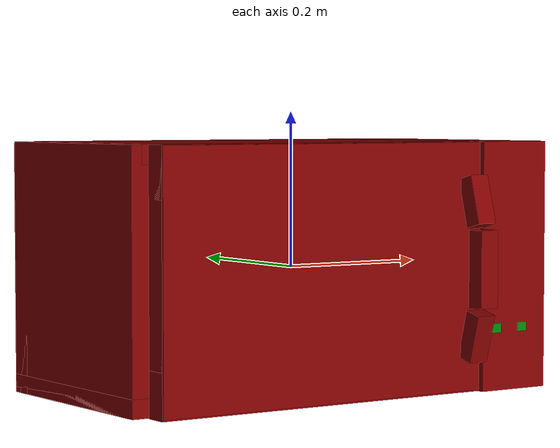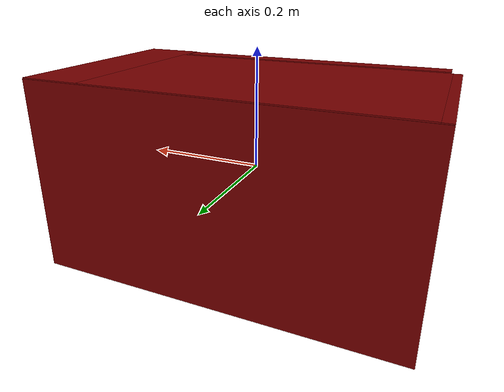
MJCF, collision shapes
<?xml version='1.0' encoding='UTF-8'?>
<mujoco model="model">
  <option timestep="0.002" gravity="0.0 0.0 -9.81"/>
  <compiler angle="radian"/>
  <asset>
    <mesh file="visuals/door.obj" name="door_vis"/>
    <mesh file="visuals/door_Clear.obj" name="door_Clear_vis"/>
    <mesh file="visuals/Body001.obj" name="Body001_vis"/>
    <mesh file="visuals/Disc001.obj" name="Disc001_vis"/>
    <texture file="visuals/T_BC001.png" name="Body001_material" type="2d"/>
    <material name="Body001_material" rgba="1 1 1 1.0" texture="Body001_material" shininess="1" specular="1"/>
    <texture file="visuals/T_BC001.png" name="door_material" type="2d"/>
    <material name="door_material" rgba="1 1 1 1.0" texture="door_material" shininess="1" specular="1"/>
    <material name="door_Clear_material" rgba="0.021756866946816444 0.021756866946816444 0.021756866946816444 0.75" shininess="0.5" specular="0.3103448502657381"/>
    <texture file="visuals/T_BC001.png" name="Disc001_material" type="2d"/>
    <material name="Disc001_material" rgba="1 1 1 1.0" texture="Disc001_material" shininess="0.5" specular="0.5"/>
  </asset>
  <default>
    <default class="visual">
      <geom conaffinity="0" contype="0" group="1" type="mesh"/>
    </default>
    <default class="collision">
      <geom group="0" rgba="0.5 0 0 0.5"/>
    </default>
    <default class="spawn">
      <geom group="0" rgba="1 1 1 0.5" contype="0" conaffinity="0"/>
      <site group="0" rgba="1 1 1 0.5"/>
    </default>
    <default class="region">
      <geom group="1" conaffinity="0" contype="0" rgba="0 1 0 0"/>
    </default>
  </default>
  <worldbody>
    <body>
      <body name="object">
        <geom class="collision" type="cylinder" pos="-0.04303608 0.03716139 -0.12631971" size="0.11190134286880493 0.0009499265579506755" quat="1.0 0.0 0.0 0.0" name="tray" rgba="0 1 0 0.5"/>
        <geom class="collision" type="box" pos="0.21929352 -0.15362347 -0.08028984" size="0.007259576581418514 0.00034565318492241204 0.006006236653774977" quat="1.0 0.0 0.0 0.0" name="stop_button" rgba="0.0 0.5 0 0.5"/>
        <geom class="collision" type="box" pos="0.26204094 -0.15361616 -0.08028984" size="0.007371836341917515 0.0003401900758035481 0.00600624131038785" quat="1.0 0.0 0.0 0.0" name="start_button" rgba="0.0 0.5 0 0.5"/>
        <geom mesh="Body001_vis" type="mesh" solimp="0.998 0.998 0.001" solref="0.001 1" friction="0.95 0.3 0.1" class="visual" material="Body001_material"/>
        <geom class="collision" type="box" pos="-0.28896058 0.04130977 0.00007484" size="0.011907682754099369 0.148495614528656 0.16152003407478333" quat="1.0 0.0 0.0 0.0"/>
        <geom class="collision" type="box" pos="0.24857815 0.01836173 -0.00000002" size="0.052290093153715134 0.17144492268562317 0.16199369728565216" quat="1.0 0.0 0.0 0.0"/>
        <geom class="collision" type="box" pos="-0.04344033 0.04130977 0.15008594" size="0.24334365129470825 0.1484958380460739 0.011907802894711494" quat="1.0 0.0 0.0 0.0"/>
        <geom class="collision" type="box" pos="-0.01550968 0.04130977 -0.15008590" size="0.28535860776901245 0.1484958827495575 0.011907716281712055" quat="1.0 0.0 0.0 0.0"/>
        <geom class="collision" type="box" pos="-0.00000003 0.17502934 -0.00091003" size="0.30086827278137207 0.01552149560302496 0.1610836237668991" quat="1.0 0.0 0.0 0.0"/>
        <body name="door">
          <joint axis="0.0 0.0 1.0" pos="-0.28054434 -0.13442751 -0.00011008" limited="true" name="microjoint" range="-1.5707963267948966 0.0" type="hinge" damping="1" frictionloss="1" armature=".01" stiffness="0.05"/>
          <geom mesh="door_vis" type="mesh" solimp="0.998 0.998 0.001" solref="0.001 1" friction="0.95 0.3 0.1" class="visual" material="door_material"/>
          <geom class="collision" type="box" pos="-0.04560722 -0.13233020 0.12985308" size="0.2380245476961136 0.01497406605631113 0.03214065730571747" quat="1.0 0.0 0.0 0.0"/>
          <geom class="collision" type="box" pos="-0.04560729 -0.13233020 -0.13246559" size="0.2380245476961136 0.014974069781601429 0.028716322034597397" quat="1.0 0.0 0.0 0.0"/>
          <geom class="collision" type="box" pos="-0.27931947 -0.13233020 0.01064263" size="0.004312328994274139 0.014974069781601429 0.15135109424591064" quat="1.0 0.0 0.0 0.0"/>
          <geom class="collision" type="box" pos="0.17542243 -0.16536285 0.08602121" size="0.03196621686220169 0.012132388539612293 0.013920203782618046" quat="0.701056957244873 -0.09229596704244614 0.7010577917098999 -0.09229596704244614"/>
          <geom class="collision" type="box" pos="0.17542240 -0.16569608 -0.08701607" size="0.03157207742333412 0.012132388539612293 0.013920203782618046" quat="0.701056957244873 0.09229596704244614 0.7010577917098999 0.09229596704244614"/>
          <geom class="collision" type="box" pos="0.17542243 -0.17841836 0.00011517" size="0.013920200057327747 0.012132389470934868 0.0498102530837059" quat="1.0 0.0 0.0 0.0" name="door_handle_main"/>
          <geom class="collision" type="box" pos="-0.04793771 -0.14548228 -0.00202442" size="0.2304336428642273 0.001935357111506164 0.10758929699659348" quat="7.549790126404332e-08 0.0 1.0 0.0"/>
          <geom class="collision" type="box" pos="-0.04560703 -0.14815217 0.00124248" size="0.23802471160888672 0.001935357111506164 0.1600121408700943" quat="7.549790126404332e-08 0.0 1.0 0.0" name="door_main"/>
          <body name="door_Clear">
            <geom mesh="door_Clear_vis" type="mesh" solimp="0.998 0.998 0.001" solref="0.001 1" friction="0.95 0.3 0.1" class="visual" material="door_Clear_material"/>
            <geom class="collision" type="box" pos="-0.04793771 -0.14548228 -0.00202442" size="0.2304336428642273 0.001935357111506164 0.10758929699659348" quat="7.549790126404332e-08 0.0 1.0 0.0"/>
          </body>
        </body>
        <body name="Disc001">
          <joint axis="0.0 0.0 1.0" pos="-0.04303873 0.03716240 -0.13039817" limited="false" name="Disc001_joint" range="0 360" type="hinge" damping="1" frictionloss="1" armature=".01" stiffness="0.05"/>
          <geom mesh="Disc001_vis" type="mesh" solimp="0.998 0.998 0.001" solref="0.001 1" friction="0.95 0.3 0.1" class="visual" material="Disc001_material"/>
          <geom class="collision" type="cylinder" pos="-0.04303608 0.03716139 -0.13162979" size="0.11209063231945038 0.002526095835492015" quat="1.0 0.0 0.0 0.0"/>
        </body>
        <geom class="region" name="reg_int" type="box" pos="-0.03969134499999999 0.023013665000000003 0.0027310299999999954" size="0.229894245 0.13019994499999998 0.12910082"/>
        <geom class="region" name="reg_main" type="box" pos="0.0 0.018671629999999995 0.0" size="0.30305894 0.17287907 0.1629937"/>
      <geom class="region" name="reg_tray" type="cylinder" pos="-0.04303608 0.03716139 0.003231033278975337" size="0.11190134286880493 0.12760081672102466"/></body>
    </body>
  </worldbody>
  <actuator>
    <motor name="microjoint_actuator" joint="microjoint" gear="10"/>
    <motor name="Disc001_joint_actuator" joint="Disc001_joint" gear="10"/>
  </actuator>
</mujoco>
